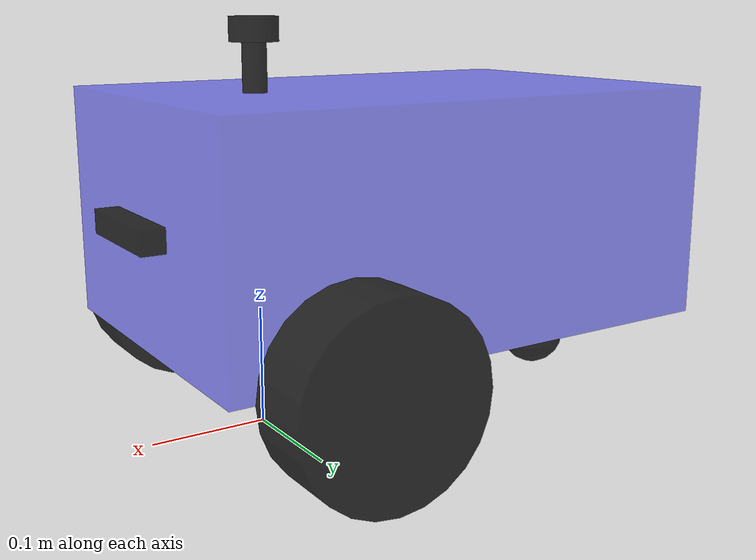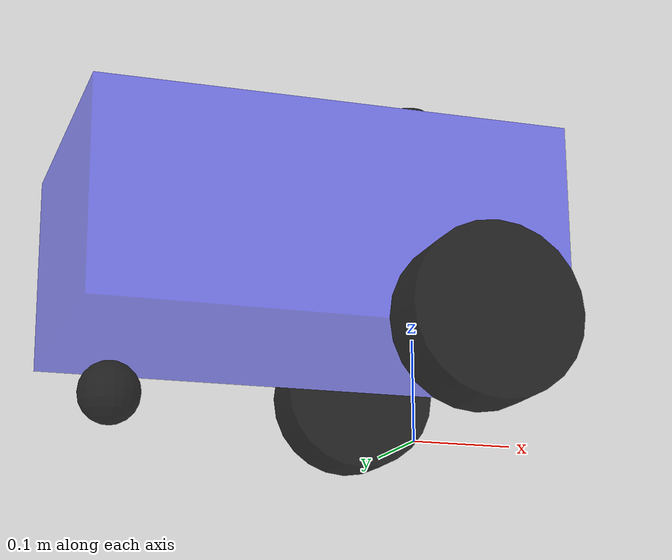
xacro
<?xml version="1.0"?>
<robot xmlns:xacro="http://www.ros.org/wiki/xacro" name="fishbot">
    <xacro:include filename="$(find fishbot_description)/urdf/fishbot/base.urdf.xacro" />
    <!-- 传感器组件 -->
    <xacro:include filename="$(find fishbot_description)/urdf/fishbot/sensor/imu.urdf.xacro" />
    <xacro:include filename="$(find fishbot_description)/urdf/fishbot/sensor/laser.urdf.xacro" />
    <xacro:include filename="$(find fishbot_description)/urdf/fishbot/sensor/camera.urdf.xacro" />
     <!-- 执行器组件 -->
    <xacro:include filename="$(find fishbot_description)/urdf/fishbot/actuator/wheel.urdf.xacro" />
    <xacro:include filename="$(find fishbot_description)/urdf/fishbot/actuator/caster.urdf.xacro" />

    <xacro:base_xacro length="0.20" width="0.30" depth="0.45" wheel_radius="0.08" x_offset="-0.125" />
    <!-- 传感器 -->
    <xacro:imu_xacro xyz="-0.125 0 0.02" />
    <xacro:laser_xacro xyz="0 0 0.125" />
    <xacro:camera_xacro xyz="0.11 0 0.0" />
    <!-- 执行器：两轮驱动 + 单后万向轮 -->
    <xacro:wheel_xacro wheel_name="left" xyz="0.0 0.18 -0.10" radius="0.08" length="0.06" />
    <xacro:wheel_xacro wheel_name="right" xyz="0.0 -0.18 -0.10" radius="0.08" length="0.06" />
    <xacro:caster_xacro caster_name="rear" xyz="-0.30 0.0 -0.15" />
    <!-- Gazebo 插件 -->
    <xacro:include filename="$(find fishbot_description)/urdf/fishbot/plugins/gazebo_control_plugin.xacro" />
    <xacro:gazebo_control_plugin />
    <xacro:include filename="$(find fishbot_description)/urdf/fishbot/plugins/gazebo_sensor_plugin.xacro" />
    <xacro:gazebo_sensor_plugin />
</robot>

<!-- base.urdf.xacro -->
<robot xmlns:xacro="http://www.ros.org/wiki/xacro">
   <xacro:include filename="$(find fishbot_description)/urdf/fishbot/common_inertia.xacro" />
    <xacro:macro name="base_xacro" params="length width depth wheel_radius x_offset">
     <link name="base_footprint" />

        <joint name="base_joint" type="fixed">
            <parent link="base_footprint" />
            <child link="base_link" />
            <origin xyz="0.0 0.0 ${length/2.0+wheel_radius-0.001}" rpy="0 0 0" />
        </joint>

        <link name="base_link">
            <visual>
                <origin xyz="${x_offset} 0 0.0" rpy="0 0 0" />
                <geometry>
                    <box size="${depth} ${width} ${length}" />
                </geometry>
                <material name="blue">
                    <color rgba="0.1 0.1 1.0 0.5"/>
                </material>
            </visual>
            <collision>
                <origin xyz="${x_offset} 0 0.0" rpy="0 0 0" />
                <geometry>
                    <box size="${depth} ${width} ${length}" />
                </geometry>
                <material name="blue">
                    <color rgba="0.1 0.1 1.0 0.5"/>
                </material>
            </collision>
            <inertial>
                <origin xyz="${x_offset} 0 0.0" rpy="0 0 0" />
                <mass value="5.0" />
                <inertia ixx="${(5.0/12.0) * (width*width + length*length)}" ixy="0.0" ixz="0.0"
                         iyy="${(5.0/12.0) * (depth*depth + length*length)}" iyz="0.0"
                         izz="${(5.0/12.0) * (depth*depth + width*width)}" />
            </inertial>
        </link>

    </xacro:macro>

</robot>

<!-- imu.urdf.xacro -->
<robot xmlns:xacro="http://www.ros.org/wiki/xacro">
   <xacro:include filename="$(find bot_description)/urdf/bot/common_inertia.xacro" />
    <xacro:macro name="imu_xacro" params="xyz">
        <link name="imu_link">
            <visual>
                <origin xyz="0 0 00" rpy="0 0 0" />
                <geometry>
                    <box size="0.02 0.02 0.02" />
                </geometry>
                <material name="black">
                    <color rgba="0 0 0 0.8" />
                </material>
            </visual>
            <collision>
                <origin xyz="0 0 00" rpy="0 0 0" />
                <geometry>
                    <box size="0.02 0.02 0.02" />
                </geometry>
                <material name="black">
                    <color rgba="0 0 0 0.8" />
                </material>
            </collision>
            <xacro:box_inertia m="0.01" w="0.02" d="0.02" h="0.02"/>
        </link>

        <joint name="imu_joint" type="fixed">
            <parent link="base_link" />
            <child link="imu_link" />
            <origin xyz="${xyz}" />
        </joint>
    </xacro:macro>
</robot>

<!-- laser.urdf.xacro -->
<robot xmlns:xacro="http://www.ros.org/wiki/xacro">
   <xacro:include filename="$(find fishbot_description)/urdf/fishbot/common_inertia.xacro" />
    <xacro:macro name="laser_xacro" params="xyz">
        <gazebo reference="laser_cylinder_link">
            <material>Gazebo/Black</material>
        </gazebo>
        <gazebo reference="laser_link">
            <material>Gazebo/Black</material>
        </gazebo>

        <!-- ============雷达支撑杆================ -->
        <link name="laser_cylinder_link">
            <visual>
                <origin xyz="0 0 0" rpy="0 0 0" />
                <geometry>
                    <cylinder length="0.05" radius="0.01" />
                </geometry>
                <material name="black">
                    <color rgba="0.0 0.0 0.0 0.8" />
                </material>
            </visual>
            <collision>
                <origin xyz="0 0 0" rpy="0 0 0" />
                <geometry>
                    <cylinder length="0.05" radius="0.01" />
                </geometry>
                <material name="black">
                    <color rgba="0.0 0.0 0.0 0.8" />
                </material>
            </collision>
            <xacro:cylinder_inertia m="0.01" r="0.01" h="0.05" />
        </link>

        <joint name="laser_cylinder_joint" type="fixed">
            <parent link="base_link" />
            <child link="laser_cylinder_link" />
            <origin xyz="${xyz}" />
        </joint>
        <!-- ============雷达================ -->
        <link name="laser_link">
            <visual>
                <origin xyz="0 0 0" rpy="0 0 0" />
                <geometry>
                    <cylinder length="0.02" radius="0.02" />
                </geometry>
                <material name="black">
                    <color rgba="0.0 0.0 0.0 0.8" />
                </material>
            </visual>
            <collision>
                <origin xyz="0 0 0" rpy="0 0 0" />
                <geometry>
                    <cylinder length="0.02" radius="0.02" />
                </geometry>
                <material name="black">
                    <color rgba="0.0 0.0 0.0 0.8" />
                </material>
            </collision>
            <xacro:cylinder_inertia m="0.03" r="0.02" h="0.02" />
        </link>

        <joint name="laser_joint" type="fixed">
            <parent link="laser_cylinder_link" />
            <child link="laser_link" />
            <origin xyz="0 0 0.025" />
        </joint>

    </xacro:macro>

</robot>

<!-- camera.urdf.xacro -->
<robot xmlns:xacro="http://www.ros.org/wiki/xacro">
   <xacro:include filename="$(find bot_description)/urdf/bot/common_inertia.xacro" />
    <xacro:macro name="camera_xacro" params="xyz">
        <!-- ============相机模块================ -->
        <link name="camera_link">
            <visual>
                <origin xyz="0 0 0.0" rpy="0 0 0" />
                <geometry>
                    <box size="0.02 0.10 0.02" />
                </geometry>
                <material name="black">
                    <color rgba="0.0 0.0 0.0 0.8"/>
                </material>
            </visual>
            <collision>
                <origin xyz="0 0 0.0" rpy="0 0 0" />
                <geometry>
                    <box size="0.02 0.10 0.02" />
                </geometry>
                <material name="black">
                    <color rgba="0.0 0.0 0.0 0.8"/>
                </material>
            </collision>
            <xacro:box_inertia m="0.01" w="0.02" h="0.10" d="0.02" />
        </link>
        <link name="camera_optical_link"></link>
        <joint name="camera_optical_joint" type="fixed">
            <parent link="camera_link" />
            <child link="camera_optical_link" />
            <origin xyz="0 0 0" rpy="${-pi/2} 0 ${-pi/2}" />
        </joint>

        <joint name="camera_joint" type="fixed">
            <parent link="base_link" />
            <child link="camera_link" />
            <origin xyz="${xyz}" />
        </joint>
    </xacro:macro>

</robot>

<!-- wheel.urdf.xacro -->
<robot xmlns:xacro="http://www.ros.org/wiki/xacro">
   <xacro:include filename="$(find fishbot_description)/urdf/fishbot/common_inertia.xacro" />
    <xacro:macro name="wheel_xacro" params="wheel_name xyz radius length">
        <link name="${wheel_name}_wheel_link">
            <visual>
                <origin xyz="0 0 0" rpy="1.57079 0 0" />
                <geometry>
                    <cylinder length="${length}" radius="${radius}" />
                </geometry>
                <material name="black">
                    <color rgba="0.0 0.0 0.0 0.8"/>
                </material>
            </visual>
            <collision>
                <origin xyz="0 0 0" rpy="1.57079 0 0" />
                <geometry>
                    <cylinder length="${length}" radius="${radius}" />
                </geometry>
                <material name="black">
                    <color rgba="0.0 0.0 0.0 0.8"/>
                </material>
            </collision>
            <xacro:cylinder_inertia m="0.5" h="${length}" r="${radius}"/>
        </link>
        <gazebo reference="${wheel_name}_wheel_link">
            <mu1 value="1.0" />
            <mu2 value="1.0" />
            <kp value="1000000000.0" />
            <kd value="1.0" />
        </gazebo>

        <joint name="${wheel_name}_wheel_joint" type="continuous">
            <parent link="base_link" />
            <child link="${wheel_name}_wheel_link" />
            <origin xyz="${xyz}" />
            <axis xyz="0 1 0" />
        </joint>
    </xacro:macro>
</robot>

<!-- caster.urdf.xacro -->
<robot xmlns:xacro="http://www.ros.org/wiki/xacro">
   <xacro:include filename="$(find fishbot_description)/urdf/fishbot/common_inertia.xacro" />
    <xacro:macro name="caster_xacro" params="caster_name xyz">
        <link name="${caster_name}_caster_link">
            <visual>
                <origin xyz="0 0 0" rpy="0 0 0" />
                <geometry>
                    <sphere radius="0.03" />
                </geometry>
                <material name="black">
                    <color rgba="0.0 0.0 0.0 0.8"/>
                </material>
            </visual>
            <collision>
                <origin xyz="0 0 0" rpy="0 0 0" />
                <geometry>
                    <sphere radius="0.03" />
                </geometry>
                <material name="black">
                    <color rgba="0.0 0.0 0.0 0.8"/>
                </material>
            </collision>
            <xacro:sphere_inertia m="0.02" r="0.03" />
        </link>
        <gazebo reference="${caster_name}_caster_link">
            <mu1 value="0.0" />
            <mu2 value="0.0" />
            <kp value="1000000000.0" />
            <kd value="1.0" />
        </gazebo>

        <joint name="${caster_name}_caster_joint" type="fixed">
            <parent link="base_link" />
            <child link="${caster_name}_caster_link" />
            <origin xyz="${xyz}" />
            <axis xyz="0 0 0" />
        </joint>

    </xacro:macro>
</robot>
